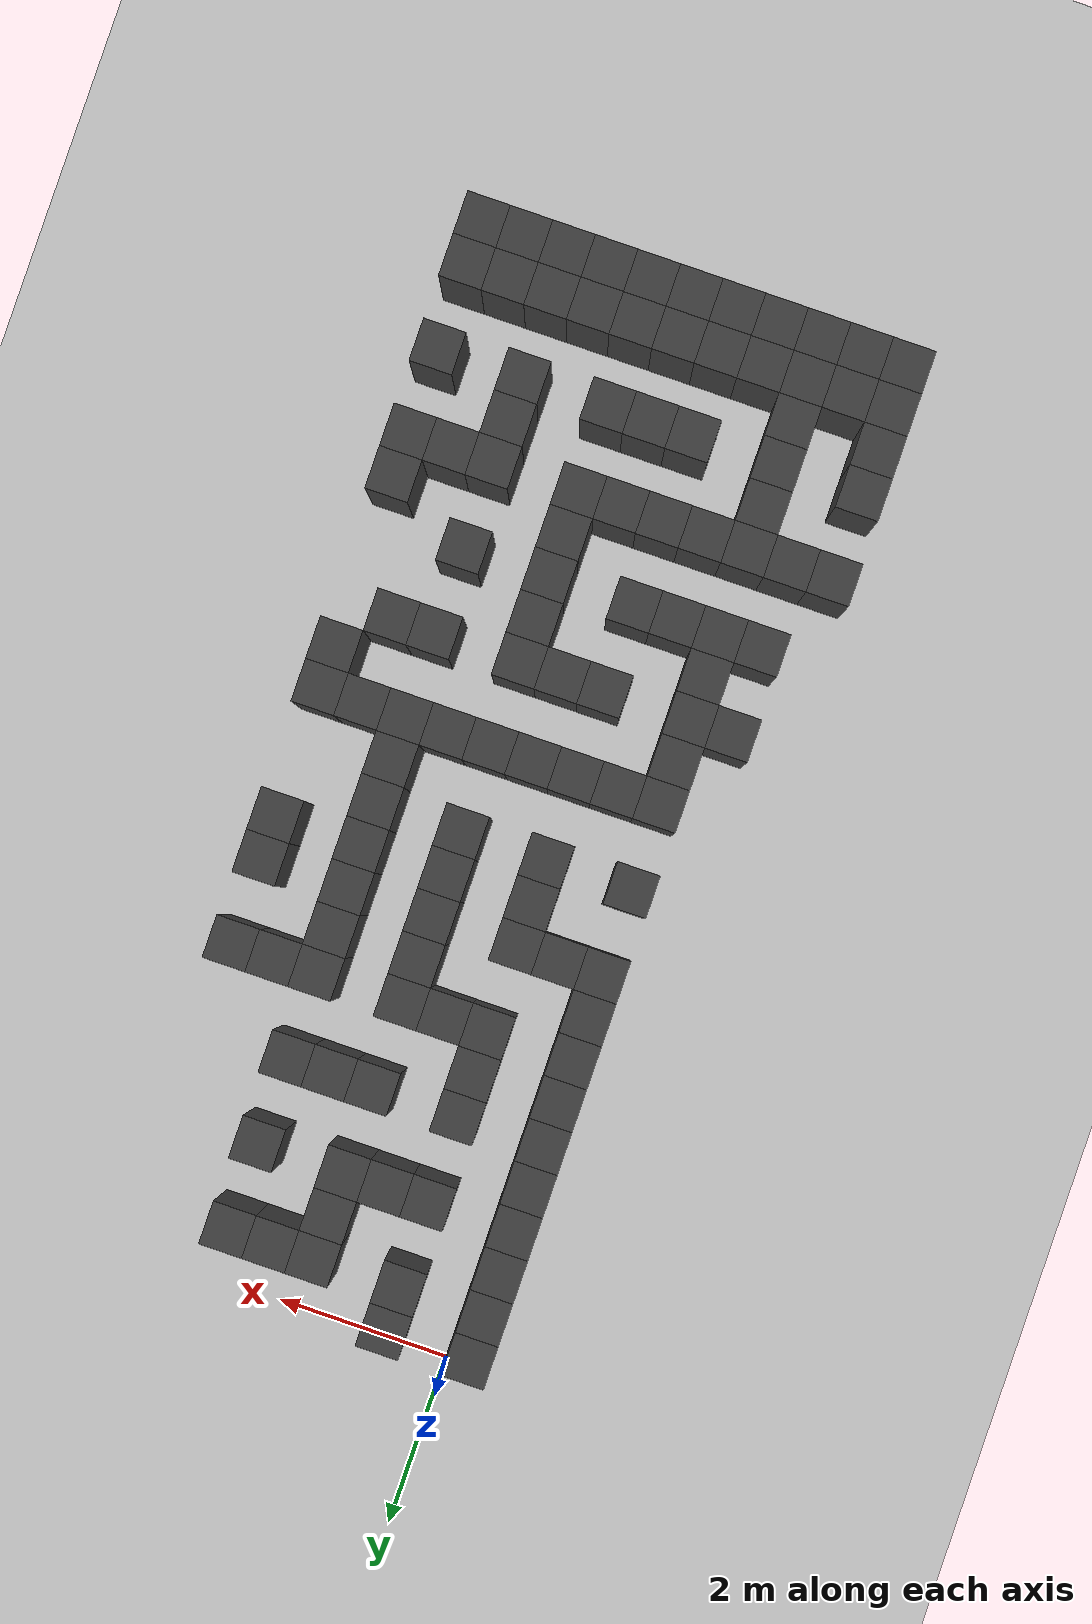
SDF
<sdf version="1.7">
 <world name="map_18505">
  <model name="ground_plane">
   <static>true</static>
   <link name="link">
    <collision name="collision">
     <geometry><plane><normal>0 0 1</normal><size>200 200</size></plane></geometry>
    </collision>
    <visual name="visual">
     <geometry><plane><normal>0 0 1</normal><size>200 200</size></plane></geometry>
     <material><ambient>0.8 0.8 0.8 1</ambient><diffuse>0.8 0.8 0.8 1</diffuse></material>
    </visual>
   </link>
  </model>
  <model name="maze_environment">
   <static>true</static>
   <link name="wall_657">
    <pose>-0.250 -0.250 0.500 0 0 0</pose>
    <collision name="col"><geometry><box><size>0.5 0.5 1.0</size></box></geometry></collision>
    <visual name="vis">
     <geometry><box><size>0.5 0.5 1.0</size></box></geometry>
     <material><ambient>0.15 0.15 0.15 1</ambient><diffuse>0.25 0.25 0.25 1</diffuse></material>
    </visual>
   </link>
   <link name="wall_658">
    <pose>0.750 -0.250 0.500 0 0 0</pose>
    <collision name="col"><geometry><box><size>0.5 0.5 1.0</size></box></geometry></collision>
    <visual name="vis">
     <geometry><box><size>0.5 0.5 1.0</size></box></geometry>
     <material><ambient>0.15 0.15 0.15 1</ambient><diffuse>0.25 0.25 0.25 1</diffuse></material>
    </visual>
   </link>
   <link name="wall_679">
    <pose>-0.250 -0.750 0.500 0 0 0</pose>
    <collision name="col"><geometry><box><size>0.5 0.5 1.0</size></box></geometry></collision>
    <visual name="vis">
     <geometry><box><size>0.5 0.5 1.0</size></box></geometry>
     <material><ambient>0.15 0.15 0.15 1</ambient><diffuse>0.25 0.25 0.25 1</diffuse></material>
    </visual>
   </link>
   <link name="wall_680">
    <pose>0.750 -0.750 0.500 0 0 0</pose>
    <collision name="col"><geometry><box><size>0.5 0.5 1.0</size></box></geometry></collision>
    <visual name="vis">
     <geometry><box><size>0.5 0.5 1.0</size></box></geometry>
     <material><ambient>0.15 0.15 0.15 1</ambient><diffuse>0.25 0.25 0.25 1</diffuse></material>
    </visual>
   </link>
   <link name="wall_681">
    <pose>1.750 -0.750 0.500 0 0 0</pose>
    <collision name="col"><geometry><box><size>0.5 0.5 1.0</size></box></geometry></collision>
    <visual name="vis">
     <geometry><box><size>0.5 0.5 1.0</size></box></geometry>
     <material><ambient>0.15 0.15 0.15 1</ambient><diffuse>0.25 0.25 0.25 1</diffuse></material>
    </visual>
   </link>
   <link name="wall_682">
    <pose>2.250 -0.750 0.500 0 0 0</pose>
    <collision name="col"><geometry><box><size>0.5 0.5 1.0</size></box></geometry></collision>
    <visual name="vis">
     <geometry><box><size>0.5 0.5 1.0</size></box></geometry>
     <material><ambient>0.15 0.15 0.15 1</ambient><diffuse>0.25 0.25 0.25 1</diffuse></material>
    </visual>
   </link>
   <link name="wall_683">
    <pose>2.750 -0.750 0.500 0 0 0</pose>
    <collision name="col"><geometry><box><size>0.5 0.5 1.0</size></box></geometry></collision>
    <visual name="vis">
     <geometry><box><size>0.5 0.5 1.0</size></box></geometry>
     <material><ambient>0.15 0.15 0.15 1</ambient><diffuse>0.25 0.25 0.25 1</diffuse></material>
    </visual>
   </link>
   <link name="wall_705">
    <pose>-0.250 -1.250 0.500 0 0 0</pose>
    <collision name="col"><geometry><box><size>0.5 0.5 1.0</size></box></geometry></collision>
    <visual name="vis">
     <geometry><box><size>0.5 0.5 1.0</size></box></geometry>
     <material><ambient>0.15 0.15 0.15 1</ambient><diffuse>0.25 0.25 0.25 1</diffuse></material>
    </visual>
   </link>
   <link name="wall_706">
    <pose>1.750 -1.250 0.500 0 0 0</pose>
    <collision name="col"><geometry><box><size>0.5 0.5 1.0</size></box></geometry></collision>
    <visual name="vis">
     <geometry><box><size>0.5 0.5 1.0</size></box></geometry>
     <material><ambient>0.15 0.15 0.15 1</ambient><diffuse>0.25 0.25 0.25 1</diffuse></material>
    </visual>
   </link>
   <link name="wall_732">
    <pose>-0.250 -1.750 0.500 0 0 0</pose>
    <collision name="col"><geometry><box><size>0.5 0.5 1.0</size></box></geometry></collision>
    <visual name="vis">
     <geometry><box><size>0.5 0.5 1.0</size></box></geometry>
     <material><ambient>0.15 0.15 0.15 1</ambient><diffuse>0.25 0.25 0.25 1</diffuse></material>
    </visual>
   </link>
   <link name="wall_733">
    <pose>0.750 -1.750 0.500 0 0 0</pose>
    <collision name="col"><geometry><box><size>0.5 0.5 1.0</size></box></geometry></collision>
    <visual name="vis">
     <geometry><box><size>0.5 0.5 1.0</size></box></geometry>
     <material><ambient>0.15 0.15 0.15 1</ambient><diffuse>0.25 0.25 0.25 1</diffuse></material>
    </visual>
   </link>
   <link name="wall_734">
    <pose>1.250 -1.750 0.500 0 0 0</pose>
    <collision name="col"><geometry><box><size>0.5 0.5 1.0</size></box></geometry></collision>
    <visual name="vis">
     <geometry><box><size>0.5 0.5 1.0</size></box></geometry>
     <material><ambient>0.15 0.15 0.15 1</ambient><diffuse>0.25 0.25 0.25 1</diffuse></material>
    </visual>
   </link>
   <link name="wall_735">
    <pose>1.750 -1.750 0.500 0 0 0</pose>
    <collision name="col"><geometry><box><size>0.5 0.5 1.0</size></box></geometry></collision>
    <visual name="vis">
     <geometry><box><size>0.5 0.5 1.0</size></box></geometry>
     <material><ambient>0.15 0.15 0.15 1</ambient><diffuse>0.25 0.25 0.25 1</diffuse></material>
    </visual>
   </link>
   <link name="wall_736">
    <pose>2.750 -1.750 0.500 0 0 0</pose>
    <collision name="col"><geometry><box><size>0.5 0.5 1.0</size></box></geometry></collision>
    <visual name="vis">
     <geometry><box><size>0.5 0.5 1.0</size></box></geometry>
     <material><ambient>0.15 0.15 0.15 1</ambient><diffuse>0.25 0.25 0.25 1</diffuse></material>
    </visual>
   </link>
   <link name="wall_752">
    <pose>-0.250 -2.250 0.500 0 0 0</pose>
    <collision name="col"><geometry><box><size>0.5 0.5 1.0</size></box></geometry></collision>
    <visual name="vis">
     <geometry><box><size>0.5 0.5 1.0</size></box></geometry>
     <material><ambient>0.15 0.15 0.15 1</ambient><diffuse>0.25 0.25 0.25 1</diffuse></material>
    </visual>
   </link>
   <link name="wall_779">
    <pose>-0.250 -2.750 0.500 0 0 0</pose>
    <collision name="col"><geometry><box><size>0.5 0.5 1.0</size></box></geometry></collision>
    <visual name="vis">
     <geometry><box><size>0.5 0.5 1.0</size></box></geometry>
     <material><ambient>0.15 0.15 0.15 1</ambient><diffuse>0.25 0.25 0.25 1</diffuse></material>
    </visual>
   </link>
   <link name="wall_780">
    <pose>0.750 -2.750 0.500 0 0 0</pose>
    <collision name="col"><geometry><box><size>0.5 0.5 1.0</size></box></geometry></collision>
    <visual name="vis">
     <geometry><box><size>0.5 0.5 1.0</size></box></geometry>
     <material><ambient>0.15 0.15 0.15 1</ambient><diffuse>0.25 0.25 0.25 1</diffuse></material>
    </visual>
   </link>
   <link name="wall_781">
    <pose>1.750 -2.750 0.500 0 0 0</pose>
    <collision name="col"><geometry><box><size>0.5 0.5 1.0</size></box></geometry></collision>
    <visual name="vis">
     <geometry><box><size>0.5 0.5 1.0</size></box></geometry>
     <material><ambient>0.15 0.15 0.15 1</ambient><diffuse>0.25 0.25 0.25 1</diffuse></material>
    </visual>
   </link>
   <link name="wall_782">
    <pose>2.250 -2.750 0.500 0 0 0</pose>
    <collision name="col"><geometry><box><size>0.5 0.5 1.0</size></box></geometry></collision>
    <visual name="vis">
     <geometry><box><size>0.5 0.5 1.0</size></box></geometry>
     <material><ambient>0.15 0.15 0.15 1</ambient><diffuse>0.25 0.25 0.25 1</diffuse></material>
    </visual>
   </link>
   <link name="wall_783">
    <pose>2.750 -2.750 0.500 0 0 0</pose>
    <collision name="col"><geometry><box><size>0.5 0.5 1.0</size></box></geometry></collision>
    <visual name="vis">
     <geometry><box><size>0.5 0.5 1.0</size></box></geometry>
     <material><ambient>0.15 0.15 0.15 1</ambient><diffuse>0.25 0.25 0.25 1</diffuse></material>
    </visual>
   </link>
   <link name="wall_803">
    <pose>-0.250 -3.250 0.500 0 0 0</pose>
    <collision name="col"><geometry><box><size>0.5 0.5 1.0</size></box></geometry></collision>
    <visual name="vis">
     <geometry><box><size>0.5 0.5 1.0</size></box></geometry>
     <material><ambient>0.15 0.15 0.15 1</ambient><diffuse>0.25 0.25 0.25 1</diffuse></material>
    </visual>
   </link>
   <link name="wall_804">
    <pose>0.750 -3.250 0.500 0 0 0</pose>
    <collision name="col"><geometry><box><size>0.5 0.5 1.0</size></box></geometry></collision>
    <visual name="vis">
     <geometry><box><size>0.5 0.5 1.0</size></box></geometry>
     <material><ambient>0.15 0.15 0.15 1</ambient><diffuse>0.25 0.25 0.25 1</diffuse></material>
    </visual>
   </link>
   <link name="wall_828">
    <pose>-0.250 -3.750 0.500 0 0 0</pose>
    <collision name="col"><geometry><box><size>0.5 0.5 1.0</size></box></geometry></collision>
    <visual name="vis">
     <geometry><box><size>0.5 0.5 1.0</size></box></geometry>
     <material><ambient>0.15 0.15 0.15 1</ambient><diffuse>0.25 0.25 0.25 1</diffuse></material>
    </visual>
   </link>
   <link name="wall_829">
    <pose>0.750 -3.750 0.500 0 0 0</pose>
    <collision name="col"><geometry><box><size>0.5 0.5 1.0</size></box></geometry></collision>
    <visual name="vis">
     <geometry><box><size>0.5 0.5 1.0</size></box></geometry>
     <material><ambient>0.15 0.15 0.15 1</ambient><diffuse>0.25 0.25 0.25 1</diffuse></material>
    </visual>
   </link>
   <link name="wall_830">
    <pose>1.250 -3.750 0.500 0 0 0</pose>
    <collision name="col"><geometry><box><size>0.5 0.5 1.0</size></box></geometry></collision>
    <visual name="vis">
     <geometry><box><size>0.5 0.5 1.0</size></box></geometry>
     <material><ambient>0.15 0.15 0.15 1</ambient><diffuse>0.25 0.25 0.25 1</diffuse></material>
    </visual>
   </link>
   <link name="wall_831">
    <pose>1.750 -3.750 0.500 0 0 0</pose>
    <collision name="col"><geometry><box><size>0.5 0.5 1.0</size></box></geometry></collision>
    <visual name="vis">
     <geometry><box><size>0.5 0.5 1.0</size></box></geometry>
     <material><ambient>0.15 0.15 0.15 1</ambient><diffuse>0.25 0.25 0.25 1</diffuse></material>
    </visual>
   </link>
   <link name="wall_832">
    <pose>2.750 -3.750 0.500 0 0 0</pose>
    <collision name="col"><geometry><box><size>0.5 0.5 1.0</size></box></geometry></collision>
    <visual name="vis">
     <geometry><box><size>0.5 0.5 1.0</size></box></geometry>
     <material><ambient>0.15 0.15 0.15 1</ambient><diffuse>0.25 0.25 0.25 1</diffuse></material>
    </visual>
   </link>
   <link name="wall_833">
    <pose>3.250 -3.750 0.500 0 0 0</pose>
    <collision name="col"><geometry><box><size>0.5 0.5 1.0</size></box></geometry></collision>
    <visual name="vis">
     <geometry><box><size>0.5 0.5 1.0</size></box></geometry>
     <material><ambient>0.15 0.15 0.15 1</ambient><diffuse>0.25 0.25 0.25 1</diffuse></material>
    </visual>
   </link>
   <link name="wall_834">
    <pose>3.750 -3.750 0.500 0 0 0</pose>
    <collision name="col"><geometry><box><size>0.5 0.5 1.0</size></box></geometry></collision>
    <visual name="vis">
     <geometry><box><size>0.5 0.5 1.0</size></box></geometry>
     <material><ambient>0.15 0.15 0.15 1</ambient><diffuse>0.25 0.25 0.25 1</diffuse></material>
    </visual>
   </link>
   <link name="wall_853">
    <pose>-0.250 -4.250 0.500 0 0 0</pose>
    <collision name="col"><geometry><box><size>0.5 0.5 1.0</size></box></geometry></collision>
    <visual name="vis">
     <geometry><box><size>0.5 0.5 1.0</size></box></geometry>
     <material><ambient>0.15 0.15 0.15 1</ambient><diffuse>0.25 0.25 0.25 1</diffuse></material>
    </visual>
   </link>
   <link name="wall_854">
    <pose>1.750 -4.250 0.500 0 0 0</pose>
    <collision name="col"><geometry><box><size>0.5 0.5 1.0</size></box></geometry></collision>
    <visual name="vis">
     <geometry><box><size>0.5 0.5 1.0</size></box></geometry>
     <material><ambient>0.15 0.15 0.15 1</ambient><diffuse>0.25 0.25 0.25 1</diffuse></material>
    </visual>
   </link>
   <link name="wall_855">
    <pose>2.750 -4.250 0.500 0 0 0</pose>
    <collision name="col"><geometry><box><size>0.5 0.5 1.0</size></box></geometry></collision>
    <visual name="vis">
     <geometry><box><size>0.5 0.5 1.0</size></box></geometry>
     <material><ambient>0.15 0.15 0.15 1</ambient><diffuse>0.25 0.25 0.25 1</diffuse></material>
    </visual>
   </link>
   <link name="wall_876">
    <pose>-0.250 -4.750 0.500 0 0 0</pose>
    <collision name="col"><geometry><box><size>0.5 0.5 1.0</size></box></geometry></collision>
    <visual name="vis">
     <geometry><box><size>0.5 0.5 1.0</size></box></geometry>
     <material><ambient>0.15 0.15 0.15 1</ambient><diffuse>0.25 0.25 0.25 1</diffuse></material>
    </visual>
   </link>
   <link name="wall_877">
    <pose>0.250 -4.750 0.500 0 0 0</pose>
    <collision name="col"><geometry><box><size>0.5 0.5 1.0</size></box></geometry></collision>
    <visual name="vis">
     <geometry><box><size>0.5 0.5 1.0</size></box></geometry>
     <material><ambient>0.15 0.15 0.15 1</ambient><diffuse>0.25 0.25 0.25 1</diffuse></material>
    </visual>
   </link>
   <link name="wall_878">
    <pose>0.750 -4.750 0.500 0 0 0</pose>
    <collision name="col"><geometry><box><size>0.5 0.5 1.0</size></box></geometry></collision>
    <visual name="vis">
     <geometry><box><size>0.5 0.5 1.0</size></box></geometry>
     <material><ambient>0.15 0.15 0.15 1</ambient><diffuse>0.25 0.25 0.25 1</diffuse></material>
    </visual>
   </link>
   <link name="wall_879">
    <pose>1.750 -4.750 0.500 0 0 0</pose>
    <collision name="col"><geometry><box><size>0.5 0.5 1.0</size></box></geometry></collision>
    <visual name="vis">
     <geometry><box><size>0.5 0.5 1.0</size></box></geometry>
     <material><ambient>0.15 0.15 0.15 1</ambient><diffuse>0.25 0.25 0.25 1</diffuse></material>
    </visual>
   </link>
   <link name="wall_880">
    <pose>2.750 -4.750 0.500 0 0 0</pose>
    <collision name="col"><geometry><box><size>0.5 0.5 1.0</size></box></geometry></collision>
    <visual name="vis">
     <geometry><box><size>0.5 0.5 1.0</size></box></geometry>
     <material><ambient>0.15 0.15 0.15 1</ambient><diffuse>0.25 0.25 0.25 1</diffuse></material>
    </visual>
   </link>
   <link name="wall_881">
    <pose>3.750 -4.750 0.500 0 0 0</pose>
    <collision name="col"><geometry><box><size>0.5 0.5 1.0</size></box></geometry></collision>
    <visual name="vis">
     <geometry><box><size>0.5 0.5 1.0</size></box></geometry>
     <material><ambient>0.15 0.15 0.15 1</ambient><diffuse>0.25 0.25 0.25 1</diffuse></material>
    </visual>
   </link>
   <link name="wall_900">
    <pose>0.750 -5.250 0.500 0 0 0</pose>
    <collision name="col"><geometry><box><size>0.5 0.5 1.0</size></box></geometry></collision>
    <visual name="vis">
     <geometry><box><size>0.5 0.5 1.0</size></box></geometry>
     <material><ambient>0.15 0.15 0.15 1</ambient><diffuse>0.25 0.25 0.25 1</diffuse></material>
    </visual>
   </link>
   <link name="wall_901">
    <pose>1.750 -5.250 0.500 0 0 0</pose>
    <collision name="col"><geometry><box><size>0.5 0.5 1.0</size></box></geometry></collision>
    <visual name="vis">
     <geometry><box><size>0.5 0.5 1.0</size></box></geometry>
     <material><ambient>0.15 0.15 0.15 1</ambient><diffuse>0.25 0.25 0.25 1</diffuse></material>
    </visual>
   </link>
   <link name="wall_902">
    <pose>2.750 -5.250 0.500 0 0 0</pose>
    <collision name="col"><geometry><box><size>0.5 0.5 1.0</size></box></geometry></collision>
    <visual name="vis">
     <geometry><box><size>0.5 0.5 1.0</size></box></geometry>
     <material><ambient>0.15 0.15 0.15 1</ambient><diffuse>0.25 0.25 0.25 1</diffuse></material>
    </visual>
   </link>
   <link name="wall_903">
    <pose>3.750 -5.250 0.500 0 0 0</pose>
    <collision name="col"><geometry><box><size>0.5 0.5 1.0</size></box></geometry></collision>
    <visual name="vis">
     <geometry><box><size>0.5 0.5 1.0</size></box></geometry>
     <material><ambient>0.15 0.15 0.15 1</ambient><diffuse>0.25 0.25 0.25 1</diffuse></material>
    </visual>
   </link>
   <link name="wall_928">
    <pose>-0.250 -5.750 0.500 0 0 0</pose>
    <collision name="col"><geometry><box><size>0.5 0.5 1.0</size></box></geometry></collision>
    <visual name="vis">
     <geometry><box><size>0.5 0.5 1.0</size></box></geometry>
     <material><ambient>0.15 0.15 0.15 1</ambient><diffuse>0.25 0.25 0.25 1</diffuse></material>
    </visual>
   </link>
   <link name="wall_929">
    <pose>0.750 -5.750 0.500 0 0 0</pose>
    <collision name="col"><geometry><box><size>0.5 0.5 1.0</size></box></geometry></collision>
    <visual name="vis">
     <geometry><box><size>0.5 0.5 1.0</size></box></geometry>
     <material><ambient>0.15 0.15 0.15 1</ambient><diffuse>0.25 0.25 0.25 1</diffuse></material>
    </visual>
   </link>
   <link name="wall_930">
    <pose>1.750 -5.750 0.500 0 0 0</pose>
    <collision name="col"><geometry><box><size>0.5 0.5 1.0</size></box></geometry></collision>
    <visual name="vis">
     <geometry><box><size>0.5 0.5 1.0</size></box></geometry>
     <material><ambient>0.15 0.15 0.15 1</ambient><diffuse>0.25 0.25 0.25 1</diffuse></material>
    </visual>
   </link>
   <link name="wall_931">
    <pose>2.750 -5.750 0.500 0 0 0</pose>
    <collision name="col"><geometry><box><size>0.5 0.5 1.0</size></box></geometry></collision>
    <visual name="vis">
     <geometry><box><size>0.5 0.5 1.0</size></box></geometry>
     <material><ambient>0.15 0.15 0.15 1</ambient><diffuse>0.25 0.25 0.25 1</diffuse></material>
    </visual>
   </link>
   <link name="wall_951">
    <pose>2.750 -6.250 0.500 0 0 0</pose>
    <collision name="col"><geometry><box><size>0.5 0.5 1.0</size></box></geometry></collision>
    <visual name="vis">
     <geometry><box><size>0.5 0.5 1.0</size></box></geometry>
     <material><ambient>0.15 0.15 0.15 1</ambient><diffuse>0.25 0.25 0.25 1</diffuse></material>
    </visual>
   </link>
   <link name="wall_973">
    <pose>-0.250 -6.750 0.500 0 0 0</pose>
    <collision name="col"><geometry><box><size>0.5 0.5 1.0</size></box></geometry></collision>
    <visual name="vis">
     <geometry><box><size>0.5 0.5 1.0</size></box></geometry>
     <material><ambient>0.15 0.15 0.15 1</ambient><diffuse>0.25 0.25 0.25 1</diffuse></material>
    </visual>
   </link>
   <link name="wall_974">
    <pose>0.250 -6.750 0.500 0 0 0</pose>
    <collision name="col"><geometry><box><size>0.5 0.5 1.0</size></box></geometry></collision>
    <visual name="vis">
     <geometry><box><size>0.5 0.5 1.0</size></box></geometry>
     <material><ambient>0.15 0.15 0.15 1</ambient><diffuse>0.25 0.25 0.25 1</diffuse></material>
    </visual>
   </link>
   <link name="wall_975">
    <pose>0.750 -6.750 0.500 0 0 0</pose>
    <collision name="col"><geometry><box><size>0.5 0.5 1.0</size></box></geometry></collision>
    <visual name="vis">
     <geometry><box><size>0.5 0.5 1.0</size></box></geometry>
     <material><ambient>0.15 0.15 0.15 1</ambient><diffuse>0.25 0.25 0.25 1</diffuse></material>
    </visual>
   </link>
   <link name="wall_976">
    <pose>1.250 -6.750 0.500 0 0 0</pose>
    <collision name="col"><geometry><box><size>0.5 0.5 1.0</size></box></geometry></collision>
    <visual name="vis">
     <geometry><box><size>0.5 0.5 1.0</size></box></geometry>
     <material><ambient>0.15 0.15 0.15 1</ambient><diffuse>0.25 0.25 0.25 1</diffuse></material>
    </visual>
   </link>
   <link name="wall_977">
    <pose>1.750 -6.750 0.500 0 0 0</pose>
    <collision name="col"><geometry><box><size>0.5 0.5 1.0</size></box></geometry></collision>
    <visual name="vis">
     <geometry><box><size>0.5 0.5 1.0</size></box></geometry>
     <material><ambient>0.15 0.15 0.15 1</ambient><diffuse>0.25 0.25 0.25 1</diffuse></material>
    </visual>
   </link>
   <link name="wall_978">
    <pose>2.250 -6.750 0.500 0 0 0</pose>
    <collision name="col"><geometry><box><size>0.5 0.5 1.0</size></box></geometry></collision>
    <visual name="vis">
     <geometry><box><size>0.5 0.5 1.0</size></box></geometry>
     <material><ambient>0.15 0.15 0.15 1</ambient><diffuse>0.25 0.25 0.25 1</diffuse></material>
    </visual>
   </link>
   <link name="wall_979">
    <pose>2.750 -6.750 0.500 0 0 0</pose>
    <collision name="col"><geometry><box><size>0.5 0.5 1.0</size></box></geometry></collision>
    <visual name="vis">
     <geometry><box><size>0.5 0.5 1.0</size></box></geometry>
     <material><ambient>0.15 0.15 0.15 1</ambient><diffuse>0.25 0.25 0.25 1</diffuse></material>
    </visual>
   </link>
   <link name="wall_980">
    <pose>3.250 -6.750 0.500 0 0 0</pose>
    <collision name="col"><geometry><box><size>0.5 0.5 1.0</size></box></geometry></collision>
    <visual name="vis">
     <geometry><box><size>0.5 0.5 1.0</size></box></geometry>
     <material><ambient>0.15 0.15 0.15 1</ambient><diffuse>0.25 0.25 0.25 1</diffuse></material>
    </visual>
   </link>
   <link name="wall_981">
    <pose>3.750 -6.750 0.500 0 0 0</pose>
    <collision name="col"><geometry><box><size>0.5 0.5 1.0</size></box></geometry></collision>
    <visual name="vis">
     <geometry><box><size>0.5 0.5 1.0</size></box></geometry>
     <material><ambient>0.15 0.15 0.15 1</ambient><diffuse>0.25 0.25 0.25 1</diffuse></material>
    </visual>
   </link>
   <link name="wall_997">
    <pose>-0.250 -7.250 0.500 0 0 0</pose>
    <collision name="col"><geometry><box><size>0.5 0.5 1.0</size></box></geometry></collision>
    <visual name="vis">
     <geometry><box><size>0.5 0.5 1.0</size></box></geometry>
     <material><ambient>0.15 0.15 0.15 1</ambient><diffuse>0.25 0.25 0.25 1</diffuse></material>
    </visual>
   </link>
   <link name="wall_998">
    <pose>3.750 -7.250 0.500 0 0 0</pose>
    <collision name="col"><geometry><box><size>0.5 0.5 1.0</size></box></geometry></collision>
    <visual name="vis">
     <geometry><box><size>0.5 0.5 1.0</size></box></geometry>
     <material><ambient>0.15 0.15 0.15 1</ambient><diffuse>0.25 0.25 0.25 1</diffuse></material>
    </visual>
   </link>
   <link name="wall_1021">
    <pose>-0.750 -7.750 0.500 0 0 0</pose>
    <collision name="col"><geometry><box><size>0.5 0.5 1.0</size></box></geometry></collision>
    <visual name="vis">
     <geometry><box><size>0.5 0.5 1.0</size></box></geometry>
     <material><ambient>0.15 0.15 0.15 1</ambient><diffuse>0.25 0.25 0.25 1</diffuse></material>
    </visual>
   </link>
   <link name="wall_1022">
    <pose>-0.250 -7.750 0.500 0 0 0</pose>
    <collision name="col"><geometry><box><size>0.5 0.5 1.0</size></box></geometry></collision>
    <visual name="vis">
     <geometry><box><size>0.5 0.5 1.0</size></box></geometry>
     <material><ambient>0.15 0.15 0.15 1</ambient><diffuse>0.25 0.25 0.25 1</diffuse></material>
    </visual>
   </link>
   <link name="wall_1023">
    <pose>0.750 -7.750 0.500 0 0 0</pose>
    <collision name="col"><geometry><box><size>0.5 0.5 1.0</size></box></geometry></collision>
    <visual name="vis">
     <geometry><box><size>0.5 0.5 1.0</size></box></geometry>
     <material><ambient>0.15 0.15 0.15 1</ambient><diffuse>0.25 0.25 0.25 1</diffuse></material>
    </visual>
   </link>
   <link name="wall_1024">
    <pose>1.250 -7.750 0.500 0 0 0</pose>
    <collision name="col"><geometry><box><size>0.5 0.5 1.0</size></box></geometry></collision>
    <visual name="vis">
     <geometry><box><size>0.5 0.5 1.0</size></box></geometry>
     <material><ambient>0.15 0.15 0.15 1</ambient><diffuse>0.25 0.25 0.25 1</diffuse></material>
    </visual>
   </link>
   <link name="wall_1025">
    <pose>1.750 -7.750 0.500 0 0 0</pose>
    <collision name="col"><geometry><box><size>0.5 0.5 1.0</size></box></geometry></collision>
    <visual name="vis">
     <geometry><box><size>0.5 0.5 1.0</size></box></geometry>
     <material><ambient>0.15 0.15 0.15 1</ambient><diffuse>0.25 0.25 0.25 1</diffuse></material>
    </visual>
   </link>
   <link name="wall_1026">
    <pose>2.750 -7.750 0.500 0 0 0</pose>
    <collision name="col"><geometry><box><size>0.5 0.5 1.0</size></box></geometry></collision>
    <visual name="vis">
     <geometry><box><size>0.5 0.5 1.0</size></box></geometry>
     <material><ambient>0.15 0.15 0.15 1</ambient><diffuse>0.25 0.25 0.25 1</diffuse></material>
    </visual>
   </link>
   <link name="wall_1027">
    <pose>3.250 -7.750 0.500 0 0 0</pose>
    <collision name="col"><geometry><box><size>0.5 0.5 1.0</size></box></geometry></collision>
    <visual name="vis">
     <geometry><box><size>0.5 0.5 1.0</size></box></geometry>
     <material><ambient>0.15 0.15 0.15 1</ambient><diffuse>0.25 0.25 0.25 1</diffuse></material>
    </visual>
   </link>
   <link name="wall_1047">
    <pose>-0.250 -8.250 0.500 0 0 0</pose>
    <collision name="col"><geometry><box><size>0.5 0.5 1.0</size></box></geometry></collision>
    <visual name="vis">
     <geometry><box><size>0.5 0.5 1.0</size></box></geometry>
     <material><ambient>0.15 0.15 0.15 1</ambient><diffuse>0.25 0.25 0.25 1</diffuse></material>
    </visual>
   </link>
   <link name="wall_1048">
    <pose>1.750 -8.250 0.500 0 0 0</pose>
    <collision name="col"><geometry><box><size>0.5 0.5 1.0</size></box></geometry></collision>
    <visual name="vis">
     <geometry><box><size>0.5 0.5 1.0</size></box></geometry>
     <material><ambient>0.15 0.15 0.15 1</ambient><diffuse>0.25 0.25 0.25 1</diffuse></material>
    </visual>
   </link>
   <link name="wall_1072">
    <pose>-0.750 -8.750 0.500 0 0 0</pose>
    <collision name="col"><geometry><box><size>0.5 0.5 1.0</size></box></geometry></collision>
    <visual name="vis">
     <geometry><box><size>0.5 0.5 1.0</size></box></geometry>
     <material><ambient>0.15 0.15 0.15 1</ambient><diffuse>0.25 0.25 0.25 1</diffuse></material>
    </visual>
   </link>
   <link name="wall_1073">
    <pose>-0.250 -8.750 0.500 0 0 0</pose>
    <collision name="col"><geometry><box><size>0.5 0.5 1.0</size></box></geometry></collision>
    <visual name="vis">
     <geometry><box><size>0.5 0.5 1.0</size></box></geometry>
     <material><ambient>0.15 0.15 0.15 1</ambient><diffuse>0.25 0.25 0.25 1</diffuse></material>
    </visual>
   </link>
   <link name="wall_1074">
    <pose>0.250 -8.750 0.500 0 0 0</pose>
    <collision name="col"><geometry><box><size>0.5 0.5 1.0</size></box></geometry></collision>
    <visual name="vis">
     <geometry><box><size>0.5 0.5 1.0</size></box></geometry>
     <material><ambient>0.15 0.15 0.15 1</ambient><diffuse>0.25 0.25 0.25 1</diffuse></material>
    </visual>
   </link>
   <link name="wall_1075">
    <pose>0.750 -8.750 0.500 0 0 0</pose>
    <collision name="col"><geometry><box><size>0.5 0.5 1.0</size></box></geometry></collision>
    <visual name="vis">
     <geometry><box><size>0.5 0.5 1.0</size></box></geometry>
     <material><ambient>0.15 0.15 0.15 1</ambient><diffuse>0.25 0.25 0.25 1</diffuse></material>
    </visual>
   </link>
   <link name="wall_1076">
    <pose>1.750 -8.750 0.500 0 0 0</pose>
    <collision name="col"><geometry><box><size>0.5 0.5 1.0</size></box></geometry></collision>
    <visual name="vis">
     <geometry><box><size>0.5 0.5 1.0</size></box></geometry>
     <material><ambient>0.15 0.15 0.15 1</ambient><diffuse>0.25 0.25 0.25 1</diffuse></material>
    </visual>
   </link>
   <link name="wall_1077">
    <pose>2.750 -8.750 0.500 0 0 0</pose>
    <collision name="col"><geometry><box><size>0.5 0.5 1.0</size></box></geometry></collision>
    <visual name="vis">
     <geometry><box><size>0.5 0.5 1.0</size></box></geometry>
     <material><ambient>0.15 0.15 0.15 1</ambient><diffuse>0.25 0.25 0.25 1</diffuse></material>
    </visual>
   </link>
   <link name="wall_1099">
    <pose>1.750 -9.250 0.500 0 0 0</pose>
    <collision name="col"><geometry><box><size>0.5 0.5 1.0</size></box></geometry></collision>
    <visual name="vis">
     <geometry><box><size>0.5 0.5 1.0</size></box></geometry>
     <material><ambient>0.15 0.15 0.15 1</ambient><diffuse>0.25 0.25 0.25 1</diffuse></material>
    </visual>
   </link>
   <link name="wall_1100">
    <pose>3.750 -9.250 0.500 0 0 0</pose>
    <collision name="col"><geometry><box><size>0.5 0.5 1.0</size></box></geometry></collision>
    <visual name="vis">
     <geometry><box><size>0.5 0.5 1.0</size></box></geometry>
     <material><ambient>0.15 0.15 0.15 1</ambient><diffuse>0.25 0.25 0.25 1</diffuse></material>
    </visual>
   </link>
   <link name="wall_1120">
    <pose>-1.250 -9.750 0.500 0 0 0</pose>
    <collision name="col"><geometry><box><size>0.5 0.5 1.0</size></box></geometry></collision>
    <visual name="vis">
     <geometry><box><size>0.5 0.5 1.0</size></box></geometry>
     <material><ambient>0.15 0.15 0.15 1</ambient><diffuse>0.25 0.25 0.25 1</diffuse></material>
    </visual>
   </link>
   <link name="wall_1121">
    <pose>-0.750 -9.750 0.500 0 0 0</pose>
    <collision name="col"><geometry><box><size>0.5 0.5 1.0</size></box></geometry></collision>
    <visual name="vis">
     <geometry><box><size>0.5 0.5 1.0</size></box></geometry>
     <material><ambient>0.15 0.15 0.15 1</ambient><diffuse>0.25 0.25 0.25 1</diffuse></material>
    </visual>
   </link>
   <link name="wall_1122">
    <pose>-0.250 -9.750 0.500 0 0 0</pose>
    <collision name="col"><geometry><box><size>0.5 0.5 1.0</size></box></geometry></collision>
    <visual name="vis">
     <geometry><box><size>0.5 0.5 1.0</size></box></geometry>
     <material><ambient>0.15 0.15 0.15 1</ambient><diffuse>0.25 0.25 0.25 1</diffuse></material>
    </visual>
   </link>
   <link name="wall_1123">
    <pose>0.250 -9.750 0.500 0 0 0</pose>
    <collision name="col"><geometry><box><size>0.5 0.5 1.0</size></box></geometry></collision>
    <visual name="vis">
     <geometry><box><size>0.5 0.5 1.0</size></box></geometry>
     <material><ambient>0.15 0.15 0.15 1</ambient><diffuse>0.25 0.25 0.25 1</diffuse></material>
    </visual>
   </link>
   <link name="wall_1124">
    <pose>0.750 -9.750 0.500 0 0 0</pose>
    <collision name="col"><geometry><box><size>0.5 0.5 1.0</size></box></geometry></collision>
    <visual name="vis">
     <geometry><box><size>0.5 0.5 1.0</size></box></geometry>
     <material><ambient>0.15 0.15 0.15 1</ambient><diffuse>0.25 0.25 0.25 1</diffuse></material>
    </visual>
   </link>
   <link name="wall_1125">
    <pose>1.250 -9.750 0.500 0 0 0</pose>
    <collision name="col"><geometry><box><size>0.5 0.5 1.0</size></box></geometry></collision>
    <visual name="vis">
     <geometry><box><size>0.5 0.5 1.0</size></box></geometry>
     <material><ambient>0.15 0.15 0.15 1</ambient><diffuse>0.25 0.25 0.25 1</diffuse></material>
    </visual>
   </link>
   <link name="wall_1126">
    <pose>1.750 -9.750 0.500 0 0 0</pose>
    <collision name="col"><geometry><box><size>0.5 0.5 1.0</size></box></geometry></collision>
    <visual name="vis">
     <geometry><box><size>0.5 0.5 1.0</size></box></geometry>
     <material><ambient>0.15 0.15 0.15 1</ambient><diffuse>0.25 0.25 0.25 1</diffuse></material>
    </visual>
   </link>
   <link name="wall_1127">
    <pose>2.750 -9.750 0.500 0 0 0</pose>
    <collision name="col"><geometry><box><size>0.5 0.5 1.0</size></box></geometry></collision>
    <visual name="vis">
     <geometry><box><size>0.5 0.5 1.0</size></box></geometry>
     <material><ambient>0.15 0.15 0.15 1</ambient><diffuse>0.25 0.25 0.25 1</diffuse></material>
    </visual>
   </link>
   <link name="wall_1128">
    <pose>3.250 -9.750 0.500 0 0 0</pose>
    <collision name="col"><geometry><box><size>0.5 0.5 1.0</size></box></geometry></collision>
    <visual name="vis">
     <geometry><box><size>0.5 0.5 1.0</size></box></geometry>
     <material><ambient>0.15 0.15 0.15 1</ambient><diffuse>0.25 0.25 0.25 1</diffuse></material>
    </visual>
   </link>
   <link name="wall_1129">
    <pose>3.750 -9.750 0.500 0 0 0</pose>
    <collision name="col"><geometry><box><size>0.5 0.5 1.0</size></box></geometry></collision>
    <visual name="vis">
     <geometry><box><size>0.5 0.5 1.0</size></box></geometry>
     <material><ambient>0.15 0.15 0.15 1</ambient><diffuse>0.25 0.25 0.25 1</diffuse></material>
    </visual>
   </link>
   <link name="wall_1150">
    <pose>-0.250 -10.250 0.500 0 0 0</pose>
    <collision name="col"><geometry><box><size>0.5 0.5 1.0</size></box></geometry></collision>
    <visual name="vis">
     <geometry><box><size>0.5 0.5 1.0</size></box></geometry>
     <material><ambient>0.15 0.15 0.15 1</ambient><diffuse>0.25 0.25 0.25 1</diffuse></material>
    </visual>
   </link>
   <link name="wall_1151">
    <pose>2.750 -10.250 0.500 0 0 0</pose>
    <collision name="col"><geometry><box><size>0.5 0.5 1.0</size></box></geometry></collision>
    <visual name="vis">
     <geometry><box><size>0.5 0.5 1.0</size></box></geometry>
     <material><ambient>0.15 0.15 0.15 1</ambient><diffuse>0.25 0.25 0.25 1</diffuse></material>
    </visual>
   </link>
   <link name="wall_1173">
    <pose>-1.250 -10.750 0.500 0 0 0</pose>
    <collision name="col"><geometry><box><size>0.5 0.5 1.0</size></box></geometry></collision>
    <visual name="vis">
     <geometry><box><size>0.5 0.5 1.0</size></box></geometry>
     <material><ambient>0.15 0.15 0.15 1</ambient><diffuse>0.25 0.25 0.25 1</diffuse></material>
    </visual>
   </link>
   <link name="wall_1174">
    <pose>-0.250 -10.750 0.500 0 0 0</pose>
    <collision name="col"><geometry><box><size>0.5 0.5 1.0</size></box></geometry></collision>
    <visual name="vis">
     <geometry><box><size>0.5 0.5 1.0</size></box></geometry>
     <material><ambient>0.15 0.15 0.15 1</ambient><diffuse>0.25 0.25 0.25 1</diffuse></material>
    </visual>
   </link>
   <link name="wall_1175">
    <pose>0.750 -10.750 0.500 0 0 0</pose>
    <collision name="col"><geometry><box><size>0.5 0.5 1.0</size></box></geometry></collision>
    <visual name="vis">
     <geometry><box><size>0.5 0.5 1.0</size></box></geometry>
     <material><ambient>0.15 0.15 0.15 1</ambient><diffuse>0.25 0.25 0.25 1</diffuse></material>
    </visual>
   </link>
   <link name="wall_1176">
    <pose>1.250 -10.750 0.500 0 0 0</pose>
    <collision name="col"><geometry><box><size>0.5 0.5 1.0</size></box></geometry></collision>
    <visual name="vis">
     <geometry><box><size>0.5 0.5 1.0</size></box></geometry>
     <material><ambient>0.15 0.15 0.15 1</ambient><diffuse>0.25 0.25 0.25 1</diffuse></material>
    </visual>
   </link>
   <link name="wall_1177">
    <pose>1.750 -10.750 0.500 0 0 0</pose>
    <collision name="col"><geometry><box><size>0.5 0.5 1.0</size></box></geometry></collision>
    <visual name="vis">
     <geometry><box><size>0.5 0.5 1.0</size></box></geometry>
     <material><ambient>0.15 0.15 0.15 1</ambient><diffuse>0.25 0.25 0.25 1</diffuse></material>
    </visual>
   </link>
   <link name="wall_1178">
    <pose>2.750 -10.750 0.500 0 0 0</pose>
    <collision name="col"><geometry><box><size>0.5 0.5 1.0</size></box></geometry></collision>
    <visual name="vis">
     <geometry><box><size>0.5 0.5 1.0</size></box></geometry>
     <material><ambient>0.15 0.15 0.15 1</ambient><diffuse>0.25 0.25 0.25 1</diffuse></material>
    </visual>
   </link>
   <link name="wall_1179">
    <pose>3.750 -10.750 0.500 0 0 0</pose>
    <collision name="col"><geometry><box><size>0.5 0.5 1.0</size></box></geometry></collision>
    <visual name="vis">
     <geometry><box><size>0.5 0.5 1.0</size></box></geometry>
     <material><ambient>0.15 0.15 0.15 1</ambient><diffuse>0.25 0.25 0.25 1</diffuse></material>
    </visual>
   </link>
   <link name="wall_1196">
    <pose>-1.250 -11.250 0.500 0 0 0</pose>
    <collision name="col"><geometry><box><size>0.5 0.5 1.0</size></box></geometry></collision>
    <visual name="vis">
     <geometry><box><size>0.5 0.5 1.0</size></box></geometry>
     <material><ambient>0.15 0.15 0.15 1</ambient><diffuse>0.25 0.25 0.25 1</diffuse></material>
    </visual>
   </link>
   <link name="wall_1197">
    <pose>-0.250 -11.250 0.500 0 0 0</pose>
    <collision name="col"><geometry><box><size>0.5 0.5 1.0</size></box></geometry></collision>
    <visual name="vis">
     <geometry><box><size>0.5 0.5 1.0</size></box></geometry>
     <material><ambient>0.15 0.15 0.15 1</ambient><diffuse>0.25 0.25 0.25 1</diffuse></material>
    </visual>
   </link>
   <link name="wall_1223">
    <pose>-1.250 -11.750 0.500 0 0 0</pose>
    <collision name="col"><geometry><box><size>0.5 0.5 1.0</size></box></geometry></collision>
    <visual name="vis">
     <geometry><box><size>0.5 0.5 1.0</size></box></geometry>
     <material><ambient>0.15 0.15 0.15 1</ambient><diffuse>0.25 0.25 0.25 1</diffuse></material>
    </visual>
   </link>
   <link name="wall_1224">
    <pose>-0.750 -11.750 0.500 0 0 0</pose>
    <collision name="col"><geometry><box><size>0.5 0.5 1.0</size></box></geometry></collision>
    <visual name="vis">
     <geometry><box><size>0.5 0.5 1.0</size></box></geometry>
     <material><ambient>0.15 0.15 0.15 1</ambient><diffuse>0.25 0.25 0.25 1</diffuse></material>
    </visual>
   </link>
   <link name="wall_1225">
    <pose>-0.250 -11.750 0.500 0 0 0</pose>
    <collision name="col"><geometry><box><size>0.5 0.5 1.0</size></box></geometry></collision>
    <visual name="vis">
     <geometry><box><size>0.5 0.5 1.0</size></box></geometry>
     <material><ambient>0.15 0.15 0.15 1</ambient><diffuse>0.25 0.25 0.25 1</diffuse></material>
    </visual>
   </link>
   <link name="wall_1226">
    <pose>0.250 -11.750 0.500 0 0 0</pose>
    <collision name="col"><geometry><box><size>0.5 0.5 1.0</size></box></geometry></collision>
    <visual name="vis">
     <geometry><box><size>0.5 0.5 1.0</size></box></geometry>
     <material><ambient>0.15 0.15 0.15 1</ambient><diffuse>0.25 0.25 0.25 1</diffuse></material>
    </visual>
   </link>
   <link name="wall_1227">
    <pose>0.750 -11.750 0.500 0 0 0</pose>
    <collision name="col"><geometry><box><size>0.5 0.5 1.0</size></box></geometry></collision>
    <visual name="vis">
     <geometry><box><size>0.5 0.5 1.0</size></box></geometry>
     <material><ambient>0.15 0.15 0.15 1</ambient><diffuse>0.25 0.25 0.25 1</diffuse></material>
    </visual>
   </link>
   <link name="wall_1228">
    <pose>1.250 -11.750 0.500 0 0 0</pose>
    <collision name="col"><geometry><box><size>0.5 0.5 1.0</size></box></geometry></collision>
    <visual name="vis">
     <geometry><box><size>0.5 0.5 1.0</size></box></geometry>
     <material><ambient>0.15 0.15 0.15 1</ambient><diffuse>0.25 0.25 0.25 1</diffuse></material>
    </visual>
   </link>
   <link name="wall_1229">
    <pose>1.750 -11.750 0.500 0 0 0</pose>
    <collision name="col"><geometry><box><size>0.5 0.5 1.0</size></box></geometry></collision>
    <visual name="vis">
     <geometry><box><size>0.5 0.5 1.0</size></box></geometry>
     <material><ambient>0.15 0.15 0.15 1</ambient><diffuse>0.25 0.25 0.25 1</diffuse></material>
    </visual>
   </link>
   <link name="wall_1230">
    <pose>2.250 -11.750 0.500 0 0 0</pose>
    <collision name="col"><geometry><box><size>0.5 0.5 1.0</size></box></geometry></collision>
    <visual name="vis">
     <geometry><box><size>0.5 0.5 1.0</size></box></geometry>
     <material><ambient>0.15 0.15 0.15 1</ambient><diffuse>0.25 0.25 0.25 1</diffuse></material>
    </visual>
   </link>
   <link name="wall_1231">
    <pose>2.750 -11.750 0.500 0 0 0</pose>
    <collision name="col"><geometry><box><size>0.5 0.5 1.0</size></box></geometry></collision>
    <visual name="vis">
     <geometry><box><size>0.5 0.5 1.0</size></box></geometry>
     <material><ambient>0.15 0.15 0.15 1</ambient><diffuse>0.25 0.25 0.25 1</diffuse></material>
    </visual>
   </link>
   <link name="wall_1232">
    <pose>3.250 -11.750 0.500 0 0 0</pose>
    <collision name="col"><geometry><box><size>0.5 0.5 1.0</size></box></geometry></collision>
    <visual name="vis">
     <geometry><box><size>0.5 0.5 1.0</size></box></geometry>
     <material><ambient>0.15 0.15 0.15 1</ambient><diffuse>0.25 0.25 0.25 1</diffuse></material>
    </visual>
   </link>
   <link name="wall_1233">
    <pose>3.750 -11.750 0.500 0 0 0</pose>
    <collision name="col"><geometry><box><size>0.5 0.5 1.0</size></box></geometry></collision>
    <visual name="vis">
     <geometry><box><size>0.5 0.5 1.0</size></box></geometry>
     <material><ambient>0.15 0.15 0.15 1</ambient><diffuse>0.25 0.25 0.25 1</diffuse></material>
    </visual>
   </link>
   <link name="wall_1271">
    <pose>-1.250 -12.250 0.500 0 0 0</pose>
    <collision name="col"><geometry><box><size>0.5 0.5 1.0</size></box></geometry></collision>
    <visual name="vis">
     <geometry><box><size>0.5 0.5 1.0</size></box></geometry>
     <material><ambient>0.15 0.15 0.15 1</ambient><diffuse>0.25 0.25 0.25 1</diffuse></material>
    </visual>
   </link>
   <link name="wall_1272">
    <pose>-0.750 -12.250 0.500 0 0 0</pose>
    <collision name="col"><geometry><box><size>0.5 0.5 1.0</size></box></geometry></collision>
    <visual name="vis">
     <geometry><box><size>0.5 0.5 1.0</size></box></geometry>
     <material><ambient>0.15 0.15 0.15 1</ambient><diffuse>0.25 0.25 0.25 1</diffuse></material>
    </visual>
   </link>
   <link name="wall_1273">
    <pose>-0.250 -12.250 0.500 0 0 0</pose>
    <collision name="col"><geometry><box><size>0.5 0.5 1.0</size></box></geometry></collision>
    <visual name="vis">
     <geometry><box><size>0.5 0.5 1.0</size></box></geometry>
     <material><ambient>0.15 0.15 0.15 1</ambient><diffuse>0.25 0.25 0.25 1</diffuse></material>
    </visual>
   </link>
   <link name="wall_1274">
    <pose>0.250 -12.250 0.500 0 0 0</pose>
    <collision name="col"><geometry><box><size>0.5 0.5 1.0</size></box></geometry></collision>
    <visual name="vis">
     <geometry><box><size>0.5 0.5 1.0</size></box></geometry>
     <material><ambient>0.15 0.15 0.15 1</ambient><diffuse>0.25 0.25 0.25 1</diffuse></material>
    </visual>
   </link>
   <link name="wall_1275">
    <pose>0.750 -12.250 0.500 0 0 0</pose>
    <collision name="col"><geometry><box><size>0.5 0.5 1.0</size></box></geometry></collision>
    <visual name="vis">
     <geometry><box><size>0.5 0.5 1.0</size></box></geometry>
     <material><ambient>0.15 0.15 0.15 1</ambient><diffuse>0.25 0.25 0.25 1</diffuse></material>
    </visual>
   </link>
   <link name="wall_1276">
    <pose>1.250 -12.250 0.500 0 0 0</pose>
    <collision name="col"><geometry><box><size>0.5 0.5 1.0</size></box></geometry></collision>
    <visual name="vis">
     <geometry><box><size>0.5 0.5 1.0</size></box></geometry>
     <material><ambient>0.15 0.15 0.15 1</ambient><diffuse>0.25 0.25 0.25 1</diffuse></material>
    </visual>
   </link>
   <link name="wall_1277">
    <pose>1.750 -12.250 0.500 0 0 0</pose>
    <collision name="col"><geometry><box><size>0.5 0.5 1.0</size></box></geometry></collision>
    <visual name="vis">
     <geometry><box><size>0.5 0.5 1.0</size></box></geometry>
     <material><ambient>0.15 0.15 0.15 1</ambient><diffuse>0.25 0.25 0.25 1</diffuse></material>
    </visual>
   </link>
   <link name="wall_1278">
    <pose>2.250 -12.250 0.500 0 0 0</pose>
    <collision name="col"><geometry><box><size>0.5 0.5 1.0</size></box></geometry></collision>
    <visual name="vis">
     <geometry><box><size>0.5 0.5 1.0</size></box></geometry>
     <material><ambient>0.15 0.15 0.15 1</ambient><diffuse>0.25 0.25 0.25 1</diffuse></material>
    </visual>
   </link>
   <link name="wall_1279">
    <pose>2.750 -12.250 0.500 0 0 0</pose>
    <collision name="col"><geometry><box><size>0.5 0.5 1.0</size></box></geometry></collision>
    <visual name="vis">
     <geometry><box><size>0.5 0.5 1.0</size></box></geometry>
     <material><ambient>0.15 0.15 0.15 1</ambient><diffuse>0.25 0.25 0.25 1</diffuse></material>
    </visual>
   </link>
   <link name="wall_1280">
    <pose>3.250 -12.250 0.500 0 0 0</pose>
    <collision name="col"><geometry><box><size>0.5 0.5 1.0</size></box></geometry></collision>
    <visual name="vis">
     <geometry><box><size>0.5 0.5 1.0</size></box></geometry>
     <material><ambient>0.15 0.15 0.15 1</ambient><diffuse>0.25 0.25 0.25 1</diffuse></material>
    </visual>
   </link>
   <link name="wall_1281">
    <pose>3.750 -12.250 0.500 0 0 0</pose>
    <collision name="col"><geometry><box><size>0.5 0.5 1.0</size></box></geometry></collision>
    <visual name="vis">
     <geometry><box><size>0.5 0.5 1.0</size></box></geometry>
     <material><ambient>0.15 0.15 0.15 1</ambient><diffuse>0.25 0.25 0.25 1</diffuse></material>
    </visual>
   </link>
  </model>
 </world>
</sdf>
